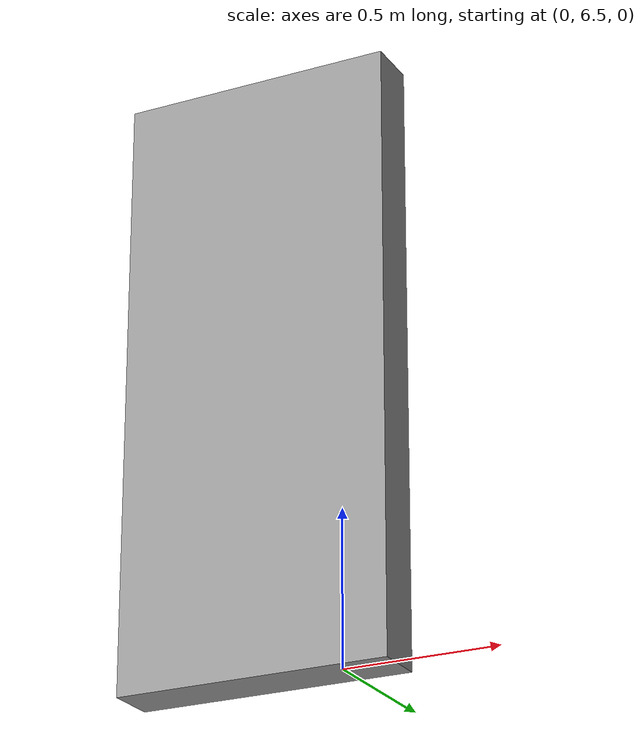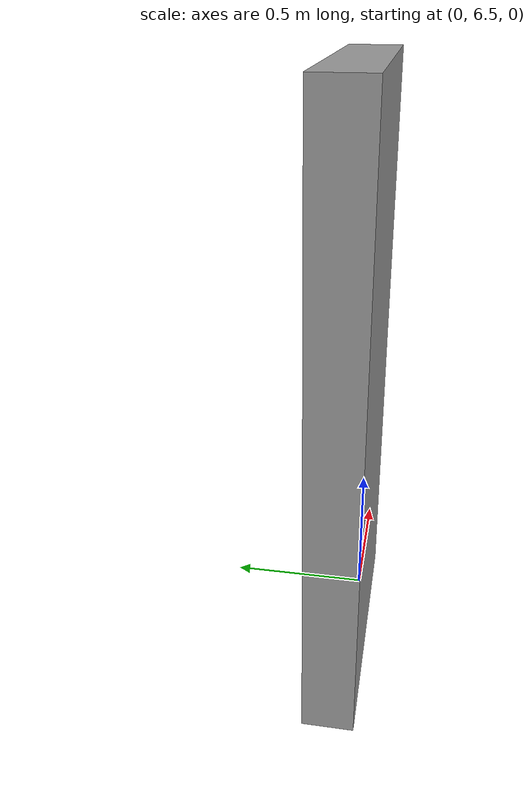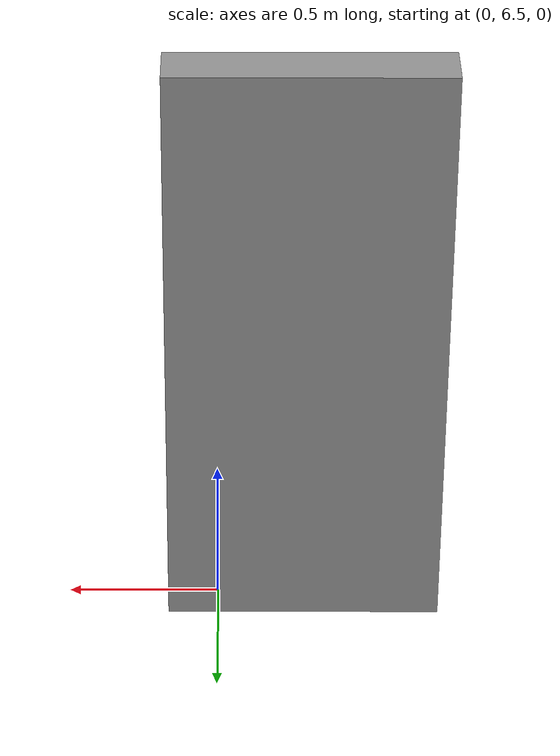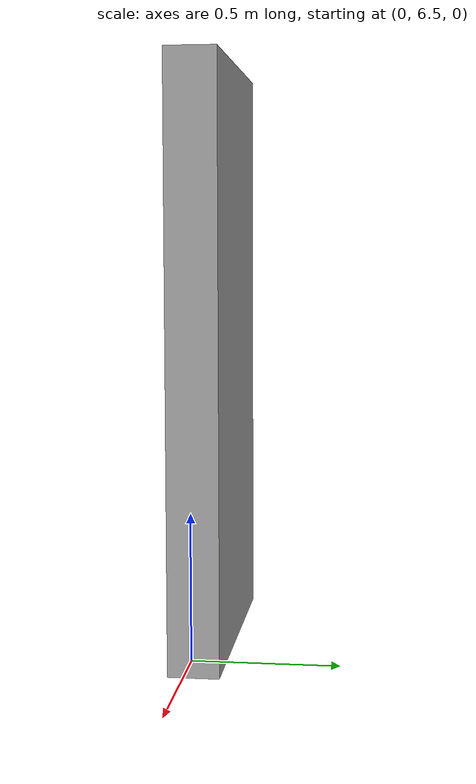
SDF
<?xml version='1.0'?>
<sdf version='1.7'>
  <model name='newworld'>
    <pose>0 0 0 0 -0 0</pose>
    <link name='Door_17'>
      <collision name='Door_17_Collision'>
        <geometry>
          <box>
            <size>0.9 0.17 2</size>
          </box>
        </geometry>
        <pose>0 0 1 0 -0 0</pose>
      </collision>
      <visual name='Door_17_Visual'>
        <pose>0 0 1 0 -0 0</pose>
        <geometry>
          <box>
            <size>0.9 0.17 2</size>
          </box>
        </geometry>
        <material>
          <script>
            <uri>file://media/materials/scripts/gazebo.material</uri>
            <name>Gazebo/Grey</name>
          </script>
        </material>
      </visual>
      <pose>-0.284586 6.53382 0 0 -0 0</pose>
    </link>
    <static>1</static>
  </model>
</sdf>
